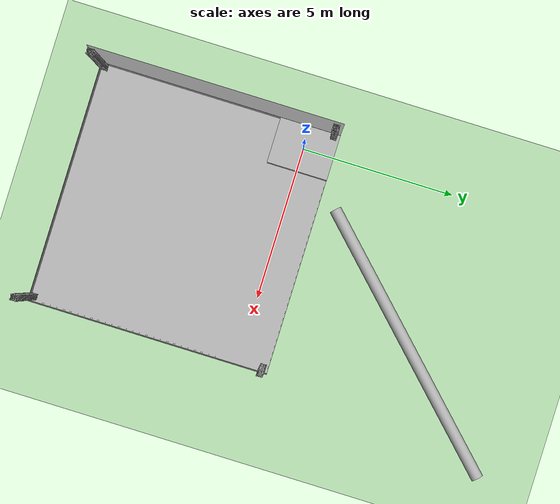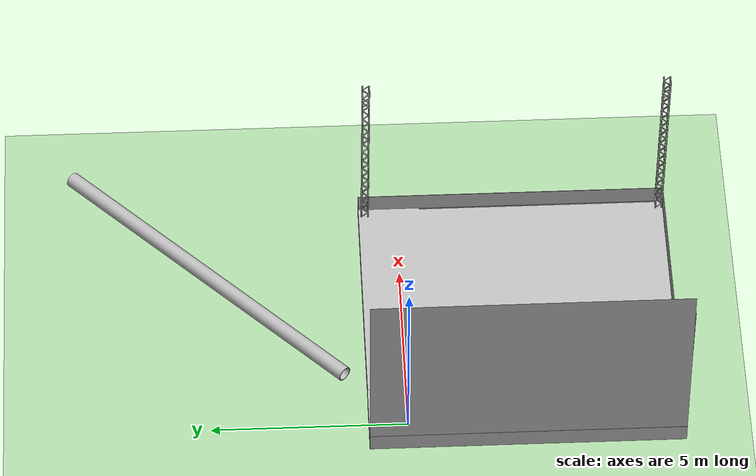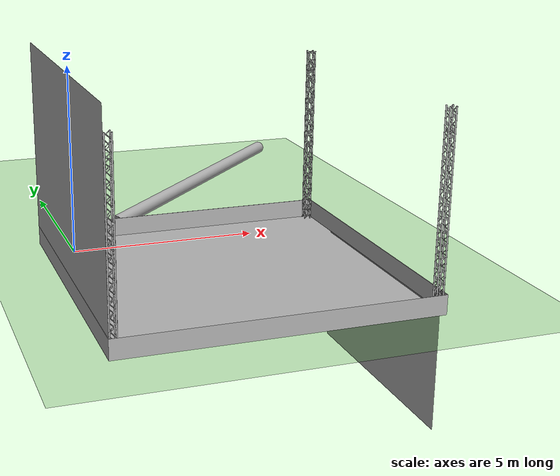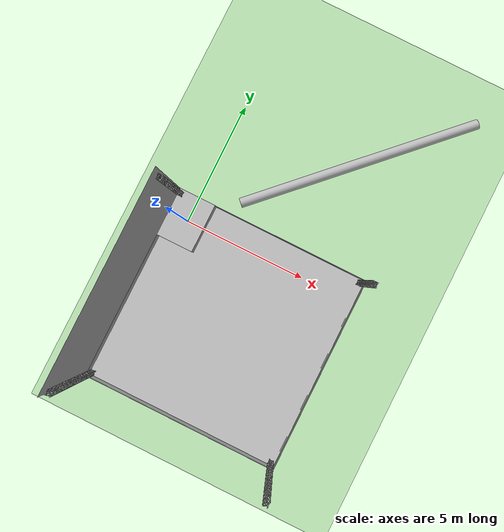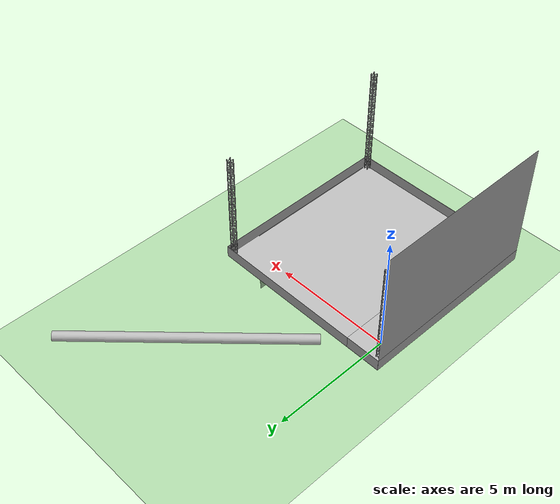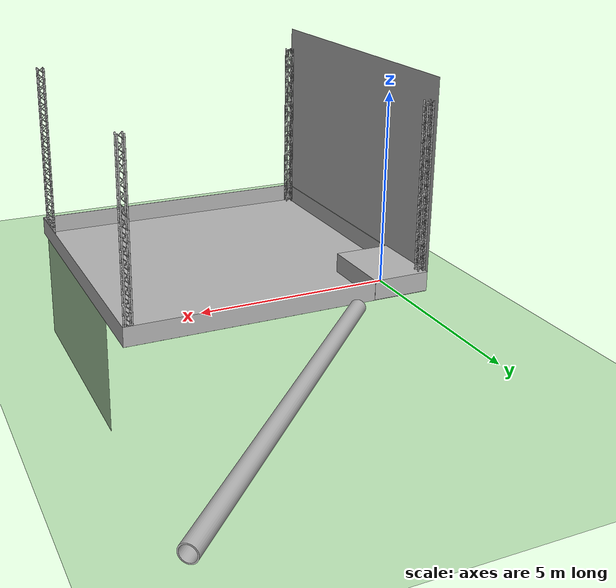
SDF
<?xml version="1.0" ?>
<?xml-model href="http://sdformat.org/schemas/root.xsd" schematypens="http://www.w3.org/2001/XMLSchema"?>
<sdf version="1.5">
  <world name="default">
    <plugin name="mrs_gazebo_static_transform_republisher_plugin" filename="libMrsGazeboCommonResources_StaticTransformRepublisher.so"/>

    <!-- coordinate system {-->
    <spherical_coordinates>
      <surface_model>EARTH_WGS84</surface_model>
      <latitude_deg>47.397743</latitude_deg>
      <longitude_deg>8.545594</longitude_deg>
      <elevation>0.0</elevation>
      <heading_deg>0</heading_deg>
    </spherical_coordinates>

    <!-- physics engine {-->
    <physics name="default_physics" default="0" type="ode">
      <gravity>0 0 -9.8066</gravity>
      <ode>
        <solver>
          <type>quick</type>
          <iters>50</iters>
          <sor>1.0</sor>
          <use_dynamic_moi_rescaling>0</use_dynamic_moi_rescaling>
        </solver>
        <constraints>
          <cfm>0</cfm>
          <erp>0.2</erp>
          <contact_max_correcting_vel>1000</contact_max_correcting_vel>
          <contact_surface_layer>0.001</contact_surface_layer>
        </constraints>
      </ode>
      <max_step_size>0.004</max_step_size>
      <real_time_factor>1</real_time_factor>
      <real_time_update_rate>250</real_time_update_rate>
      <magnetic_field>6.0e-06 2.3e-05 -4.2e-05</magnetic_field>
    </physics>

    <!-- setup shadows {-->
    <scene>
      <shadows>false</shadows>
    </scene>

    <!-- sun {-->
    <light type="directional" name="sun">
      <cast_shadows>true</cast_shadows>
      <pose>250 250 600 0 0 0</pose>
      <diffuse>0.8 0.8 0.8 1</diffuse>
      <specular>0.2 0.2 0.2 1</specular>
      <attenuation>
        <range>1000</range>
        <constant>0.9</constant>
        <linear>0.01</linear>
        <quadratic>0.001</quadratic>
      </attenuation>
      <direction>0 0 -1</direction>
    </light>

    <!-- ground plane {-->
    <model name="ground_plane">
      <static>true</static>
      <link name="link">
        <collision name="collision">
          <pose>0 0 0 0 0 0</pose>
          <geometry>
            <plane>
              <normal>0 0 1</normal>
              <size>250 250</size>
            </plane>
          </geometry>
          <surface>
            <friction>
              <ode>
                <mu>1</mu>
                <mu2>1</mu2>
              </ode>
            </friction>
          </surface>
        </collision>
        <visual name="grass">
          <pose>0 0 0 0 0 0</pose>
          <cast_shadows>false</cast_shadows>
          <geometry>
            <plane>
              <normal>0 0 1</normal>
              <size>150 250</size>
            </plane>
          </geometry>
          <material>
            <script>
              <uri>file://media/materials/scripts/Gazebo.material</uri>
              <name>Gazebo/Grass</name>
            </script>
          </material>
        </visual>
      </link>
    </model>

    <!-- GUI frame synchronization {-->
    <plugin name="mrs_gazebo_rviz_cam_synchronizer" filename="libMrsGazeboCommonResources_RvizCameraSynchronizer.so" >
      <target_frame_id>gazebo_user_camera</target_frame_id>
      <world_origin_frame_id>uav1/gps_origin</world_origin_frame_id>
      <frame_to_follow>uav1::base_link</frame_to_follow>
    </plugin>

    <!-- user camera {-->
    <gui>
      <camera name="camera">
        <pose>15 2 10 0 0.6 -2.64</pose>
      </camera>
    </gui>

    <!-- Models Worlds -->

    <!-- THE ARENA MODEL -->
    <model name="arena">
      <include>
        <uri>model://arena_spawn</uri>
        <!-- Pose ( x y z r p y ) -->
        <pose>-0.75 -7.0 0.001 0 -0 0</pose>
      </include>
    </model>

    <!-- THE TAKEOFF PLATFORM MODEL -->
    <model name="takeoff_platform">
      <include>
        <uri>model://takeoff_platform</uri>
        <pose>0.0 0.0 0.0 0.0 -0.0 0.0</pose>
      </include>
    </model>

    <!-- THE BANNER MODEL -->
    <model name="banner">
      <include>
        <uri>model://banner</uri>
        <pose>-0.75 -7.0 0.5 0.0 0.0 0.0</pose>
      </include>
    </model>

    <model name="banner_2">
      <include>
        <uri>model://banner_2</uri>
        <pose>-0.75 1.0 0.5 0.0 0.0 -1.57</pose>
      </include>
    </model>

    <!-- THE LANDING PLATFORM MODEL-->
    <model name="pipe">
      <include>
        <uri>model://pipe</uri>
        <pose>5 5 0.0 0 -0 0.785</pose>
      </include>
    </model>

    <!-- THE LANDING PLATFORM MODEL-->
    <model name="sensor_red_1">
      <include>
        <uri>model://sensor_red</uri>
        <pose>3 3 0.3 0 -0 0.785</pose>
      </include>
    </model>

    <!-- THE LANDING PLATFORM MODEL-->
    <model name="sensor_red_2">
      <include>
        <uri>model://sensor_red</uri>
        <pose>5 5 0.3 0 -0 0.785</pose>
      </include>
    </model>

    <!-- THE LANDING PLATFORM MODEL-->
    <model name="sensor_red_3">
      <include>
        <uri>model://sensor_red</uri>
        <pose>7 7 0.3 0 -0 0.785</pose>
      </include>
    </model>

    <!-- THE LANDING PLATFORM MODEL-->
    <model name="sensor_green_1">
      <include>
        <uri>model://sensor_green</uri>
        <pose>4 4 0.3 0 -0 0.785</pose>
      </include>
    </model>

    <!-- THE LANDING PLATFORM MODEL-->
    <model name="sensor_green_2">
      <include>
        <uri>model://sensor_green</uri>
        <pose>6 6 0.3 0 -0 0.785</pose>
      </include>
    </model>

  </world>
</sdf>

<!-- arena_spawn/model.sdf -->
<sdf version='1.6'>
  <model name='arena_spawn'>
    <link name='link_arena'>
      <inertial>
        <mass>15</mass>
        <inertia>
          <ixx>1</ixx>
          <ixy>1</ixy>
          <ixz>1</ixz>
          <iyy>1</iyy>
          <iyz>1</iyz>
          <izz>1</izz>
        </inertia>
      </inertial>
      <self_collide>1</self_collide>
      <enable_wind>0</enable_wind>
      <kinematic>0</kinematic>
      <pose frame=''>0 0 0 0 -0 0</pose>
      <visual name='visual'>
        <pose frame=''>0 0 0 0 -0 0</pose>
        <geometry>
          <mesh>
            <uri>model://arena_spawn/meshes/Arena.obj</uri>
            <scale>1 1 1</scale>
          </mesh>
        </geometry>
        <transparency>0</transparency>
        <cast_shadows>1</cast_shadows>
      </visual>
      <collision name='collision'>
        <laser_retro>0</laser_retro>
        <max_contacts>10</max_contacts>
        <pose frame=''>0 0 0 0 -0 0</pose>
        <geometry>
          <mesh>
            <uri>model://arena_spawn/meshes/Arena.obj</uri>
            <scale>1 1 1</scale>
          </mesh>
        </geometry>
        <surface>
          <friction>
            <ode>
              <mu>1</mu>
              <mu2>1</mu2>
              <fdir1>0 0 0</fdir1>
              <slip1>0</slip1>
              <slip2>0</slip2>
            </ode>
            <torsional>
              <coefficient>1</coefficient>
              <patch_radius>100</patch_radius>
              <surface_radius>100</surface_radius>
              <use_patch_radius>1</use_patch_radius>
              <ode>
                <slip>0</slip>
              </ode>
            </torsional>
          </friction>
          <bounce>
            <restitution_coefficient>0</restitution_coefficient>
            <threshold>1e+06</threshold>
          </bounce>
          <contact>
            <collide_without_contact>0</collide_without_contact>
            <collide_without_contact_bitmask>1</collide_without_contact_bitmask>
            <collide_bitmask>1</collide_bitmask>
            <ode>
              <soft_cfm>0</soft_cfm>
              <soft_erp>0.2</soft_erp>
              <kp>1e+13</kp>
              <kd>1</kd>
              <max_vel>0.01</max_vel>
              <min_depth>0</min_depth>
            </ode>
            <bullet>
              <split_impulse>1</split_impulse>
              <split_impulse_penetration_threshold>-0.01</split_impulse_penetration_threshold>
              <soft_cfm>0</soft_cfm>
              <soft_erp>0.2</soft_erp>
              <kp>1e+13</kp>
              <kd>1</kd>
            </bullet>
          </contact>
        </surface>
      </collision>
    </link>
    <link name='pilar_1'>
      <inertial>
        <mass>1</mass>
        <inertia>
          <ixx>0.166667</ixx>
          <ixy>0</ixy>
          <ixz>0</ixz>
          <iyy>0.166667</iyy>
          <iyz>0</iyz>
          <izz>0.166667</izz>
        </inertia>
      </inertial>
      <self_collide>1</self_collide>
      <enable_wind>0</enable_wind>
      <kinematic>0</kinematic>
      <pose frame=''>0 0 0 0 -0 0</pose>
      <visual name='visual'>
        <pose frame=''>0 0 0 0 -0 0</pose>
        <geometry>
          <mesh>
            <uri>model://arena_spawn/meshes/pilar.obj</uri>
            <scale>1 1 1</scale>
          </mesh>
        </geometry>
        <transparency>0</transparency>
        <cast_shadows>1</cast_shadows>
      </visual>
      <collision name='collision'>
        <laser_retro>0</laser_retro>
        <max_contacts>10</max_contacts>
        <pose frame=''>0 0 0 0 -0 0</pose>
        <geometry>
          <mesh>
            <uri>model://arena_spawn/meshes/pilar.obj</uri>
            <scale>1 1 1</scale>
          </mesh>
        </geometry>
        <surface>
          <friction>
            <ode>
              <mu>1</mu>
              <mu2>1</mu2>
              <fdir1>0 0 0</fdir1>
              <slip1>0</slip1>
              <slip2>0</slip2>
            </ode>
            <torsional>
              <coefficient>1</coefficient>
              <patch_radius>100</patch_radius>
              <surface_radius>100</surface_radius>
              <use_patch_radius>1</use_patch_radius>
              <ode>
                <slip>0</slip>
              </ode>
            </torsional>
          </friction>
          <bounce>
            <restitution_coefficient>0</restitution_coefficient>
            <threshold>1e+06</threshold>
          </bounce>
          <contact>
            <collide_without_contact>0</collide_without_contact>
            <collide_without_contact_bitmask>1</collide_without_contact_bitmask>
            <collide_bitmask>1</collide_bitmask>
            <ode>
              <soft_cfm>0</soft_cfm>
              <soft_erp>0.2</soft_erp>
              <kp>1e+13</kp>
              <kd>1</kd>
              <max_vel>0.01</max_vel>
              <min_depth>0</min_depth>
            </ode>
            <bullet>
              <split_impulse>1</split_impulse>
              <split_impulse_penetration_threshold>-0.01</split_impulse_penetration_threshold>
              <soft_cfm>0</soft_cfm>
              <soft_erp>0.2</soft_erp>
              <kp>1e+13</kp>
              <kd>1</kd>
            </bullet>
          </contact>
        </surface>
      </collision>
    </link>
    <link name='pilar_2'>
      <inertial>
        <mass>1</mass>
        <inertia>
          <ixx>0.166667</ixx>
          <ixy>0</ixy>
          <ixz>0</ixz>
          <iyy>0.166667</iyy>
          <iyz>0</iyz>
          <izz>0.166667</izz>
        </inertia>
      </inertial>
      <self_collide>1</self_collide>
      <enable_wind>0</enable_wind>
      <kinematic>0</kinematic>
      <pose frame=''>7.7 0 0 0 -0 0</pose>
      <visual name='visual'>
        <pose frame=''>0 0 0 0 -0 0</pose>
        <geometry>
          <mesh>
            <uri>model://arena_spawn/meshes/pilar.obj</uri>
            <scale>1 1 1</scale>
          </mesh>
        </geometry>
        <transparency>0</transparency>
        <cast_shadows>1</cast_shadows>
      </visual>
      <collision name='collision'>
        <laser_retro>0</laser_retro>
        <max_contacts>10</max_contacts>
        <pose frame=''>0 0 0 0 -0 0</pose>
        <geometry>
          <mesh>
            <uri>model://arena_spawn/meshes/pilar.obj</uri>
            <scale>1 1 1</scale>
          </mesh>
        </geometry>
        <surface>
          <friction>
            <ode>
              <mu>1</mu>
              <mu2>1</mu2>
              <fdir1>0 0 0</fdir1>
              <slip1>0</slip1>
              <slip2>0</slip2>
            </ode>
            <torsional>
              <coefficient>1</coefficient>
              <patch_radius>100</patch_radius>
              <surface_radius>100</surface_radius>
              <use_patch_radius>1</use_patch_radius>
              <ode>
                <slip>0</slip>
              </ode>
            </torsional>
          </friction>
          <bounce>
            <restitution_coefficient>0</restitution_coefficient>
            <threshold>1e+06</threshold>
          </bounce>
          <contact>
            <collide_without_contact>0</collide_without_contact>
            <collide_without_contact_bitmask>1</collide_without_contact_bitmask>
            <collide_bitmask>1</collide_bitmask>
            <ode>
              <soft_cfm>0</soft_cfm>
              <soft_erp>0.2</soft_erp>
              <kp>1e+13</kp>
              <kd>1</kd>
              <max_vel>0.01</max_vel>
              <min_depth>0</min_depth>
            </ode>
            <bullet>
              <split_impulse>1</split_impulse>
              <split_impulse_penetration_threshold>-0.01</split_impulse_penetration_threshold>
              <soft_cfm>0</soft_cfm>
              <soft_erp>0.2</soft_erp>
              <kp>1e+13</kp>
              <kd>1</kd>
            </bullet>
          </contact>
        </surface>
      </collision>
    </link>
    <link name='pilar_3'>
      <inertial>
        <mass>1</mass>
        <inertia>
          <ixx>0.166667</ixx>
          <ixy>0</ixy>
          <ixz>0</ixz>
          <iyy>0.166667</iyy>
          <iyz>0</iyz>
          <izz>0.166667</izz>
        </inertia>
      </inertial>
      <self_collide>1</self_collide>
      <enable_wind>0</enable_wind>
      <kinematic>0</kinematic>
      <pose frame=''>0 7.7 0 0 -0 0</pose>
      <visual name='visual'>
        <pose frame=''>0 0 0 0 -0 0</pose>
        <geometry>
          <mesh>
            <uri>model://arena_spawn/meshes/pilar.obj</uri>
            <scale>1 1 1</scale>
          </mesh>
        </geometry>
        <transparency>0</transparency>
        <cast_shadows>1</cast_shadows>
      </visual>
      <collision name='collision'>
        <laser_retro>0</laser_retro>
        <max_contacts>10</max_contacts>
        <pose frame=''>0 0 0 0 -0 0</pose>
        <geometry>
          <mesh>
            <uri>model://arena_spawn/meshes/pilar.obj</uri>
            <scale>1 1 1</scale>
          </mesh>
        </geometry>
        <surface>
          <friction>
            <ode>
              <mu>1</mu>
              <mu2>1</mu2>
              <fdir1>0 0 0</fdir1>
              <slip1>0</slip1>
              <slip2>0</slip2>
            </ode>
            <torsional>
              <coefficient>1</coefficient>
              <patch_radius>100</patch_radius>
              <surface_radius>100</surface_radius>
              <use_patch_radius>1</use_patch_radius>
              <ode>
                <slip>0</slip>
              </ode>
            </torsional>
          </friction>
          <bounce>
            <restitution_coefficient>0</restitution_coefficient>
            <threshold>1e+06</threshold>
          </bounce>
          <contact>
            <collide_without_contact>0</collide_without_contact>
            <collide_without_contact_bitmask>1</collide_without_contact_bitmask>
            <collide_bitmask>1</collide_bitmask>
            <ode>
              <soft_cfm>0</soft_cfm>
              <soft_erp>0.2</soft_erp>
              <kp>1e+13</kp>
              <kd>1</kd>
              <max_vel>0.01</max_vel>
              <min_depth>0</min_depth>
            </ode>
            <bullet>
              <split_impulse>1</split_impulse>
              <split_impulse_penetration_threshold>-0.01</split_impulse_penetration_threshold>
              <soft_cfm>0</soft_cfm>
              <soft_erp>0.2</soft_erp>
              <kp>1e+13</kp>
              <kd>1</kd>
            </bullet>
          </contact>
        </surface>
      </collision>
    </link>
    <link name='pilar_4'>
      <inertial>
        <mass>1</mass>
        <inertia>
          <ixx>0.166667</ixx>
          <ixy>0</ixy>
          <ixz>0</ixz>
          <iyy>0.166667</iyy>
          <iyz>0</iyz>
          <izz>0.166667</izz>
        </inertia>
      </inertial>
      <self_collide>1</self_collide>
      <enable_wind>0</enable_wind>
      <kinematic>0</kinematic>
      <pose frame=''>7.7 7.7 0 0 -0 0</pose>
      <visual name='visual'>
        <pose frame=''>0 0 0 0 -0 0</pose>
        <geometry>
          <mesh>
            <uri>model://arena_spawn/meshes/pilar.obj</uri>
            <scale>1 1 1</scale>
          </mesh>
        </geometry>
        <transparency>0</transparency>
        <cast_shadows>1</cast_shadows>
      </visual>
      <collision name='collision'>
        <laser_retro>0</laser_retro>
        <max_contacts>10</max_contacts>
        <pose frame=''>0 0 0 0 -0 0</pose>
        <geometry>
          <mesh>
            <uri>model://arena_spawn/meshes/pilar.obj</uri>
            <scale>1 1 1</scale>
          </mesh>
        </geometry>
        <surface>
          <friction>
            <ode>
              <mu>1</mu>
              <mu2>1</mu2>
              <fdir1>0 0 0</fdir1>
              <slip1>0</slip1>
              <slip2>0</slip2>
            </ode>
            <torsional>
              <coefficient>1</coefficient>
              <patch_radius>100</patch_radius>
              <surface_radius>100</surface_radius>
              <use_patch_radius>1</use_patch_radius>
              <ode>
                <slip>0</slip>
              </ode>
            </torsional>
          </friction>
          <bounce>
            <restitution_coefficient>0</restitution_coefficient>
            <threshold>1e+06</threshold>
          </bounce>
          <contact>
            <collide_without_contact>0</collide_without_contact>
            <collide_without_contact_bitmask>1</collide_without_contact_bitmask>
            <collide_bitmask>1</collide_bitmask>
            <ode>
              <soft_cfm>0</soft_cfm>
              <soft_erp>0.2</soft_erp>
              <kp>1e+13</kp>
              <kd>1</kd>
              <max_vel>0.01</max_vel>
              <min_depth>0</min_depth>
            </ode>
            <bullet>
              <split_impulse>1</split_impulse>
              <split_impulse_penetration_threshold>-0.01</split_impulse_penetration_threshold>
              <soft_cfm>0</soft_cfm>
              <soft_erp>0.2</soft_erp>
              <kp>1e+13</kp>
              <kd>1</kd>
            </bullet>
          </contact>
        </surface>
      </collision>
    </link>
    <static>1</static>
    <pose frame=''>0 0 0.0005 0 -0 0</pose>
  </model>
</sdf>

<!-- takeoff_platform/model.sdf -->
<sdf version='1.6'>
  <model name='takeoff_platform'>
    <link name='link_takeoff_platform'>
      <inertial>
        <mass>15</mass>
        <inertia>
          <ixx>1</ixx>
          <ixy>0</ixy>
          <ixz>0</ixz>
          <iyy>1</iyy>
          <iyz>0</iyz>
          <izz>1</izz>
        </inertia>
      </inertial>
      <self_collide>1</self_collide>
      <enable_wind>0</enable_wind>
      <kinematic>0</kinematic>
      <pose frame=''>0 0 0 0 -0 0</pose>
      <visual name='visual'>
        <pose frame=''>0 0 0 0 -0 0</pose>
        <geometry>
          <mesh>
            <uri>model://takeoff_platform/meshes/takeoff_platform.obj</uri>
            <scale>1 1 1</scale>
          </mesh>
        </geometry>
        <transparency>0</transparency>
        <cast_shadows>1</cast_shadows>
      </visual>
      <collision name='collision'>
        <laser_retro>0</laser_retro>
        <max_contacts>10</max_contacts>
        <pose frame=''>0 0 0 0 -0 0</pose>
        <geometry>
          <mesh>
            <uri>model://takeoff_platform/meshes/takeoff_platform.obj</uri>
            <scale>1 1 1</scale>
          </mesh>
        </geometry>
        <surface>
          <friction>
            <ode>
              <mu>1</mu>
              <mu2>1</mu2>
              <fdir1>0 0 0</fdir1>
              <slip1>0</slip1>
              <slip2>0</slip2>
            </ode>
            <torsional>
              <coefficient>1</coefficient>
              <patch_radius>100</patch_radius>
              <surface_radius>100</surface_radius>
              <use_patch_radius>1</use_patch_radius>
              <ode>
                <slip>0</slip>
              </ode>
            </torsional>
          </friction>
          <bounce>
            <restitution_coefficient>0</restitution_coefficient>
            <threshold>1e+06</threshold>
          </bounce>
          <contact>
            <collide_without_contact>0</collide_without_contact>
            <collide_without_contact_bitmask>1</collide_without_contact_bitmask>
            <collide_bitmask>1</collide_bitmask>
            <ode>
              <soft_cfm>0</soft_cfm>
              <soft_erp>0.2</soft_erp>
              <kp>1e+13</kp>
              <kd>1</kd>
              <max_vel>0.01</max_vel>
              <min_depth>0</min_depth>
            </ode>
            <bullet>
              <split_impulse>1</split_impulse>
              <split_impulse_penetration_threshold>-0.01</split_impulse_penetration_threshold>
              <soft_cfm>0</soft_cfm>
              <soft_erp>0.2</soft_erp>
              <kp>1e+13</kp>
              <kd>1</kd>
            </bullet>
          </contact>
        </surface>
      </collision>
    </link>
    <static>1</static>
    <pose frame=''>0 0 0.0005 0 -0 0</pose>
  </model>
</sdf>

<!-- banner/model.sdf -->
<sdf version='1.6'>
  <model name='banner'>
    <link name='link_0'>
      <inertial>
        <mass>1</mass>
        <inertia>
          <ixx>0.166667</ixx>
          <ixy>0</ixy>
          <ixz>0</ixz>
          <iyy>0.166667</iyy>
          <iyz>0</iyz>
          <izz>0.166667</izz>
        </inertia>
      </inertial>
      <pose>0 0 0 0 -0 0</pose>
      <visual name='visual'>
        <pose>0 0 0 0 -0 0</pose>
        <geometry>
          <mesh>
            <uri>model://banner/meshes/banner.obj</uri>
            <scale>1.0 1.0 1.0</scale>
          </mesh>
        </geometry>
        <transparency>0</transparency>
        <cast_shadows>1</cast_shadows>
      </visual>
      <collision name='collision'>
        <laser_retro>0</laser_retro>
        <max_contacts>10</max_contacts>
        <pose>0 0 0 0 -0 0</pose>
        <geometry>
          <mesh>
            <uri>model://banner/meshes/banner.obj</uri>
            <scale>1.0 1.0 1.0</scale>
          </mesh>
        </geometry>
      </collision>
    </link>
    <static>1</static>
    <allow_auto_disable>1</allow_auto_disable>
  </model>
</sdf>

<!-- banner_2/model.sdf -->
<sdf version='1.6'>
  <model name='banner_2'>
    <link name='link_0'>
      <inertial>
        <mass>1</mass>
        <inertia>
          <ixx>0.166667</ixx>
          <ixy>0</ixy>
          <ixz>0</ixz>
          <iyy>0.166667</iyy>
          <iyz>0</iyz>
          <izz>0.166667</izz>
        </inertia>
      </inertial>
      <pose>0 0 0 0 -0 0</pose>
      <visual name='visual'>
        <pose>0 0 0 0 -0 0</pose>
        <geometry>
          <mesh>
            <uri>model://banner_2/meshes/banner.obj</uri>
            <scale>1.0 1.0 1.0</scale>
          </mesh>
        </geometry>
        <transparency>0</transparency>
        <cast_shadows>1</cast_shadows>
      </visual>
      <collision name='collision'>
        <laser_retro>0</laser_retro>
        <max_contacts>10</max_contacts>
        <pose>0 0 0 0 -0 0</pose>
        <geometry>
          <mesh>
            <uri>model://banner_2/meshes/banner.obj</uri>
            <scale>1.0 1.0 1.0</scale>
          </mesh>
        </geometry>
      </collision>
    </link>
    <static>1</static>
    <allow_auto_disable>1</allow_auto_disable>
  </model>
</sdf>

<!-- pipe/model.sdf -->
<sdf version='1.4'>
  <model name="pipe">
      <static>1</static>
      <link name='link'>
        <visual name='visual'>
          <geometry>
            <mesh>
              <uri>model://pipe/meshes/pipe.dae</uri>
              <scale>1.3 1.3 1.3</scale>
            </mesh>
          </geometry>
        </visual>
        <collision name='collision'>
          <laser_retro>0</laser_retro>
          <max_contacts>10</max_contacts>
          <pose frame=''>0 0 0 0 -0 0</pose>
          <geometry>
            <mesh>
              <uri>model://pipe/meshes/pipe.dae</uri>
              <scale>1.3 1.3 1.3</scale>
            </mesh>
          </geometry>
       </collision>
      </link>
  </model>
</sdf>

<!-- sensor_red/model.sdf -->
<sdf version='1.6'>
  <model name='sensor_red'>
    <link name='link_5'>
      <inertial>
        <mass>1</mass>
        <inertia>
          <ixx>0.166667</ixx>
          <ixy>0</ixy>
          <ixz>0</ixz>
          <iyy>0.166667</iyy>
          <iyz>0</iyz>
          <izz>0.166667</izz>
        </inertia>
      </inertial>
      <pose frame=''>0 0 0 0 -0 0</pose>
      <visual name='visual'>
        <pose frame=''>0 0 0 0 -0 0</pose>
        <geometry>
          <mesh>
            <uri>model://sensor_red/meshes/sensor_red.obj</uri>
            <scale>1 1 1</scale>
          </mesh>
        </geometry>
        <material>
          <lighting>1</lighting>
          <shader type='pixel'/>
        </material>
        <transparency>0</transparency>
        <cast_shadows>1</cast_shadows>
      </visual>
      <collision name='collision'>
        <laser_retro>0</laser_retro>
        <max_contacts>10</max_contacts>
        <pose frame=''>0 0 0 0 -0 0</pose>
        <geometry>
          <mesh>
            <uri>model://sensor_red/meshes/sensor_red.obj</uri>
            <scale>1 1 1</scale>
          </mesh>
        </geometry>
        <surface>
          <friction>
            <ode>
              <mu>1</mu>
              <mu2>1</mu2>
              <fdir1>0 0 0</fdir1>
              <slip1>0</slip1>
              <slip2>0</slip2>
            </ode>
            <torsional>
              <coefficient>1</coefficient>
              <patch_radius>0</patch_radius>
              <surface_radius>0</surface_radius>
              <use_patch_radius>1</use_patch_radius>
              <ode>
                <slip>0</slip>
              </ode>
            </torsional>
          </friction>
          <bounce>
            <restitution_coefficient>0</restitution_coefficient>
            <threshold>1e+06</threshold>
          </bounce>
          <contact>
            <collide_without_contact>0</collide_without_contact>
            <collide_without_contact_bitmask>1</collide_without_contact_bitmask>
            <collide_bitmask>1</collide_bitmask>
            <ode>
              <soft_cfm>0</soft_cfm>
              <soft_erp>0.2</soft_erp>
              <kp>1e+13</kp>
              <kd>1</kd>
              <max_vel>0.01</max_vel>
              <min_depth>0</min_depth>
            </ode>
            <bullet>
              <split_impulse>1</split_impulse>
              <split_impulse_penetration_threshold>-0.01</split_impulse_penetration_threshold>
              <soft_cfm>0</soft_cfm>
              <soft_erp>0.2</soft_erp>
              <kp>1e+13</kp>
              <kd>1</kd>
            </bullet>
          </contact>
        </surface>
      </collision>
    </link>
    <static>1</static>
    <allow_auto_disable>1</allow_auto_disable>
  </model>
</sdf>

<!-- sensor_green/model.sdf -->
<sdf version='1.6'>
  <model name='sensor_green'>
    <link name='link_4'>
      <inertial>
        <mass>1</mass>
        <inertia>
          <ixx>0.166667</ixx>
          <ixy>0</ixy>
          <ixz>0</ixz>
          <iyy>0.166667</iyy>
          <iyz>0</iyz>
          <izz>0.166667</izz>
        </inertia>
      </inertial>
      <pose frame=''>0 0 0 0 -0 0</pose>
      <visual name='visual'>
        <pose frame=''>0 0 0 0 -0 0</pose>
        <geometry>
          <mesh>
            <uri>model://sensor_green/meshes/sensor_green.obj</uri>
            <scale>1 1 1</scale>
          </mesh>
        </geometry>
        <material>
          <lighting>1</lighting>
          <shader type='pixel'/>
        </material>
        <transparency>0</transparency>
        <cast_shadows>1</cast_shadows>
      </visual>
      <collision name='collision'>
        <laser_retro>0</laser_retro>
        <max_contacts>10</max_contacts>
        <pose frame=''>0 0 0 0 -0 0</pose>
        <geometry>
          <mesh>
            <uri>model://sensor_green/meshes/sensor_green.obj</uri>
            <scale>1 1 1</scale>
          </mesh>
        </geometry>
        <surface>
          <friction>
            <ode>
              <mu>1</mu>
              <mu2>1</mu2>
              <fdir1>0 0 0</fdir1>
              <slip1>0</slip1>
              <slip2>0</slip2>
            </ode>
            <torsional>
              <coefficient>1</coefficient>
              <patch_radius>0</patch_radius>
              <surface_radius>0</surface_radius>
              <use_patch_radius>1</use_patch_radius>
              <ode>
                <slip>0</slip>
              </ode>
            </torsional>
          </friction>
          <bounce>
            <restitution_coefficient>0</restitution_coefficient>
            <threshold>1e+06</threshold>
          </bounce>
          <contact>
            <collide_without_contact>0</collide_without_contact>
            <collide_without_contact_bitmask>1</collide_without_contact_bitmask>
            <collide_bitmask>1</collide_bitmask>
            <ode>
              <soft_cfm>0</soft_cfm>
              <soft_erp>0.2</soft_erp>
              <kp>1e+13</kp>
              <kd>1</kd>
              <max_vel>0.01</max_vel>
              <min_depth>0</min_depth>
            </ode>
            <bullet>
              <split_impulse>1</split_impulse>
              <split_impulse_penetration_threshold>-0.01</split_impulse_penetration_threshold>
              <soft_cfm>0</soft_cfm>
              <soft_erp>0.2</soft_erp>
              <kp>1e+13</kp>
              <kd>1</kd>
            </bullet>
          </contact>
        </surface>
      </collision>
    </link>
    <static>1</static>
    <allow_auto_disable>1</allow_auto_disable>
  </model>
</sdf>
